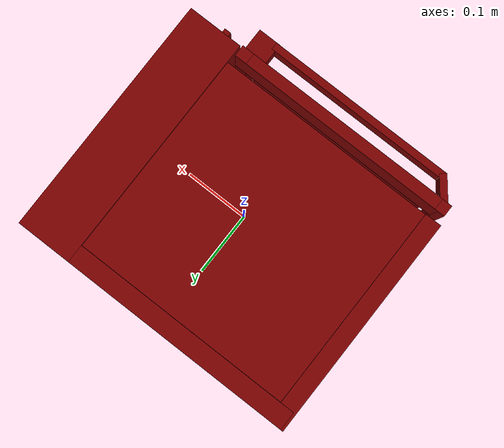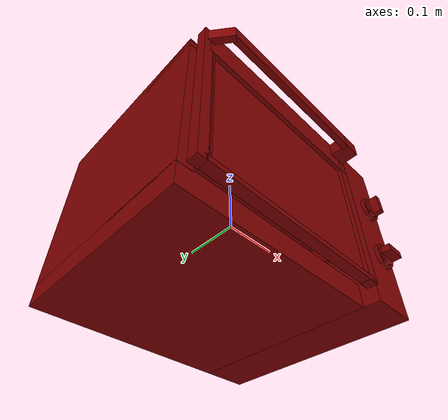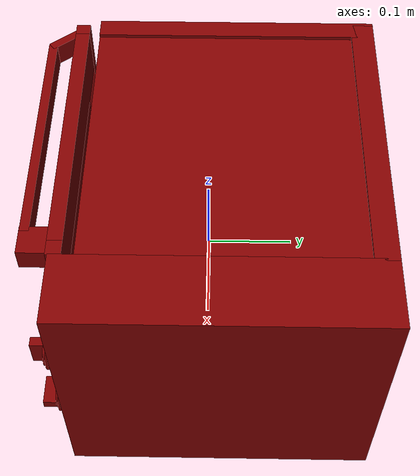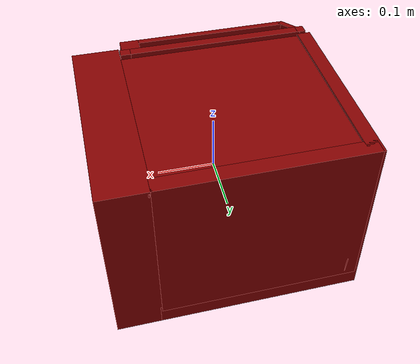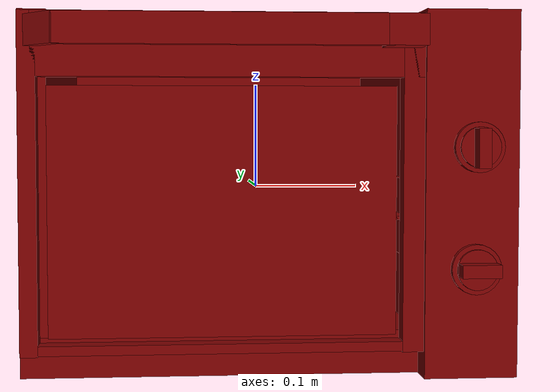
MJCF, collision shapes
<?xml version='1.0' encoding='UTF-8'?>
<mujoco model="model">
  <option timestep="0.002" gravity="0.0 0.0 -9.81"/>
  <compiler angle="radian"/>
  <asset>
    <mesh file="visuals/Body001.obj" name="Body001_vis"/>
    <mesh file="visuals/Container001.obj" name="Container001_vis"/>
    <mesh file="visuals/Door001.obj" name="Door001_vis"/>
    <mesh file="visuals/Door001_Clear.obj" name="Door001_Clear_vis"/>
    <mesh file="visuals/Knob001.obj" name="Knob001_vis"/>
    <mesh file="visuals/Knob002.obj" name="Knob002_vis"/>
    <texture file="visuals/T_BC001.png" name="Body001_material" type="2d"/>
    <material name="Body001_material" rgba="1 1 1 1.0" texture="Body001_material" shininess="0.1" specular="4"/>
    <texture file="visuals/T_BC001.png" name="Container001_material" type="2d"/>
    <material name="Container001_material" rgba="1 1 1 1.0" texture="Container001_material" shininess="0.1" specular="4"/>
    <texture file="visuals/T_BC001.png" name="Door001_material" type="2d"/>
    <material name="Door001_material" rgba="1 1 1 1.0" texture="Door001_material" shininess="0.1" specular="4"/>
    <material name="Door001_Clear_material" rgba="0.048379525542259216 0.048379525542259216 0.048379525542259216 0.800000011920929" shininess="0.141421377658844" specular="0.3103448502657381"/>
    <texture file="visuals/T_BC001.png" name="Knob001_material" type="2d"/>
    <material name="Knob001_material" rgba="1 1 1 1.0" texture="Knob001_material" shininess="0.1" specular="4"/>
    <texture file="visuals/T_BC001.png" name="Knob002_material" type="2d"/>
    <material name="Knob002_material" rgba="1 1 1 1.0" texture="Knob002_material" shininess="0.1" specular="4"/>
  </asset>
  <default>
    <default class="visual">
      <geom conaffinity="0" contype="0" group="1" type="mesh"/>
    </default>
    <default class="collision">
      <geom group="0" rgba="0.5 0 0 0.5"/>
    </default>
    <default class="spawn">
      <geom group="0" rgba="1 1 1 0.5" contype="0" conaffinity="0"/>
      <site group="0" rgba="1 1 1 0.5"/>
    </default>
    <default class="region">
      <geom group="1" conaffinity="0" contype="0" rgba="0 1 0 0"/>
    </default>
  </default>
  <worldbody>
    <body>
      <body name="object">
        <geom mesh="Body001_vis" type="mesh" solimp="0.998 0.998 0.001" solref="0.001 1" friction="0.95 0.3 0.1" class="visual" material="Body001_material"/>
        <geom class="collision" type="box" pos="-0.20415274798870087 0.030364345759153366 0.018009334802627563" size="0.01228012889623642 0.166828453540802 0.14232683181762695" quat="1.0 0.0 0.0 0.0"/>
        <geom class="collision" type="box" pos="-0.03830508887767792 0.030487140640616417 -0.14075882732868195" size="0.17812778055667877 0.1667056530714035 0.019267026335000992" quat="1.0 0.0 0.0 0.0"/>
        <geom class="collision" type="box" pos="-0.03784903511404991 0.18357542157173157 0.013823936693370342" size="0.17491492629051208 0.013617407530546188 0.1465122401714325" quat="1.0 0.0 0.0 0.0"/>
        <geom class="collision" type="box" pos="0.17535442113876343 0.017078449949622154 0.00015325029380619526" size="0.04107845202088356 0.18011435866355896 0.16018293797969818" quat="1.0 0.0 0.0 0.0"/>
        <geom class="collision" type="box" pos="-0.037926942110061646 0.030364345759153366 0.14960181713104248" size="0.17850592732429504 0.166828453540802 0.006701894570142031" quat="1.0 0.0 0.0 0.0"/>
        <geom class="collision" type="box" pos="-0.18752072751522064 0.01099355798214674 -0.004263693932443857" size="0.0038743503391742706 0.1269080638885498 0.01615913026034832" quat="1.0 0.0 0.0 0.0"/>
        <geom class="collision" type="box" pos="0.129982128739357 0.01099355798214674 -0.00426369346678257" size="0.0038743503391742706 0.1269080638885498 0.01615913212299347" quat="1.0 0.0 0.0 0.0"/>
        <geom class="collision" type="box" pos="0.129982128739357 0.01099355798214674 -0.0417608767747879" size="0.0038743503391742706 0.1269080638885498 0.01615913212299347" quat="1.0 0.0 0.0 0.0"/>
        <geom class="collision" type="box" pos="-0.18752072751522064 0.01099355798214674 -0.041760873049497604" size="0.0038743503391742706 0.1269080638885498 0.01615913026034832" quat="1.0 0.0 0.0 0.0"/>
        <body name="Container001">
          <joint axis="0.0 -1.0 0.0" pos="-0.0286320298910141 0.008345574140548706 -0.0250944085419178" limited="true" name="Container001_joint" range="0.0 0.18" type="slide" damping="1" frictionloss="1" armature=".01" stiffness="0.05"/>
          <geom mesh="Container001_vis" type="mesh" solimp="0.998 0.998 0.001" solref="0.001 1" friction="0.95 0.3 0.1" class="visual" material="Container001_material"/>
          <geom class="collision" type="box" pos="-0.028050526976585388 0.00856306403875351 -0.03312180936336517" size="0.13570380210876465 0.12284986674785614 0.0030371095053851604" quat="1.0 0.0 0.0 0.0"/>
          <geom class="collision" type="box" pos="-0.18249718844890594 0.00848282128572464 -0.023407921195030212" size="0.008577265776693821 0.12300089746713638 0.0016675754450261593" quat="1.0 0.0 0.0 0.0"/>
          <geom class="collision" type="box" pos="-0.16859768331050873 0.008476242423057556 -0.028198152780532837" size="0.008577265776693821 0.12300733476877213 0.0016675754450261593" quat="0.9440328478813171 -2.0632491271044273e-08 0.3298514783382416 7.209132402152818e-09"/>
          <geom class="collision" type="box" pos="0.11243187636137009 0.00847623497247696 -0.028198152780532837" size="0.008577265776693821 0.12300732731819153 0.001667564152739942" quat="7.127249546101666e-08 -0.9440328478813171 -2.4903092921135794e-08 -0.3298514783382416"/>
          <geom class="collision" type="box" pos="0.1255408525466919 0.00848282128572464 -0.023407921195030212" size="0.008577265776693821 0.12300089746713638 0.0016675754450261593" quat="1.0 0.0 0.0 0.0"/>
          <geom class="collision" type="box" pos="-0.16493763029575348 0.010533690452575684 -0.022929660975933075" size="0.01039555761963129 0.10141760855913162 0.0013619114179164171" quat="0.834775984287262 4.4288775313816586e-08 0.5505897402763367 -1.412595151961682e-09"/>
          <geom class="collision" type="box" pos="-0.030840031802654266 -0.10302691161632538 -0.022451981902122498" size="0.010395568795502186 0.12232556194067001 0.0013619264354929328" quat="0.560018002986908 -0.43171724677085876 0.43171700835227966 0.5600183010101318"/>
          <geom class="collision" type="box" pos="0.10875648260116577 0.010533690452575684 -0.022929660975933075" size="0.010395561344921589 0.10141760855913162 0.0013619245728477836" quat="3.057074238199675e-08 0.834775984287262 7.635351906287724e-09 0.5505897402763367"/>
          <geom class="collision" type="box" pos="-0.03084002062678337 0.12535323202610016 -0.022451981902122498" size="0.010395568795502186 0.12232555449008942 0.0013619414530694485" quat="0.4317190647125244 -0.5600156188011169 -0.5600206851959229 -0.431715190410614"/>
          <geom class="collision" type="box" pos="-0.16124983131885529 -0.09286629408597946 -0.022929660975933075" size="0.010395561344921589 0.006986106745898724 0.0013619414530694485" quat="0.8021135926246643 -0.15250761806964874 0.529046893119812 0.23122413456439972"/>
          <geom class="collision" type="box" pos="-0.15337802469730377 -0.1000886783003807 -0.022929631173610687" size="0.010395553894340992 0.006986099295318127 0.0013619114179164171" quat="0.7184903621673584 -0.28031352162361145 0.4738919734954834 0.42499685287475586"/>
          <geom class="collision" type="box" pos="-0.17176543176174164 0.010817490518093109 -0.014918908476829529" size="0.004246910568326712 0.10587437450885773 0.0010674485238268971" quat="1.0 0.0 0.0 0.0"/>
          <geom class="collision" type="box" pos="-0.028321094810962677 -0.10664207488298416 -0.014918908476829529" size="0.13291940093040466 0.0026962708216160536 0.0010674635414034128" quat="1.0 0.0 0.0 0.0"/>
          <geom class="collision" type="box" pos="-0.16910243034362793 -0.09683185815811157 -0.014918908476829529" size="0.004246880766004324 0.0049521178007125854 0.0010674335062503815" quat="0.9630976915359497 -7.4883722334107e-08 -9.148812374348836e-09 0.26915204524993896"/>
          <geom class="collision" type="box" pos="-0.16307450830936432 -0.10251420736312866 -0.014918908476829529" size="0.004246910102665424 0.0058218990452587605 0.0010674335062503815" quat="0.8660538196563721 -1.892820655768901e-08 -1.0926771487618225e-08 0.4999507665634155"/>
          <geom class="collision" type="box" pos="-0.16307449340820312 0.12372061610221863 -0.014918908476829529" size="0.004246910568326712 0.005821899976581335 0.0010674335062503815" quat="4.651262841548487e-08 -0.4999507665634155 -0.8660538196563721 -7.043785643645606e-08"/>
          <geom class="collision" type="box" pos="-0.16910243034362793 0.1180383563041687 -0.014918908476829529" size="0.004246881231665611 0.00495211873203516 0.0010674335062503815" quat="8.102094284367922e-08 0.26915183663368225 0.9630977511405945 9.411745161003182e-09"/>
          <geom class="collision" type="box" pos="-0.15337805449962616 0.12129524350166321 -0.02292964607477188" size="0.010395553894340992 0.006986084394156933 0.0013619116507470608" quat="0.4738919138908386 -0.42499667406082153 -0.7184905409812927 -0.2803134322166443"/>
          <geom class="collision" type="box" pos="-0.16124983131885529 0.11407285928726196 -0.022929653525352478" size="0.010395561344921589 0.0069860671646893024 0.0013619414530694485" quat="0.5290468335151672 -0.23122407495975494 -0.8021136522293091 -0.15250758826732635"/>
          <geom class="collision" type="box" pos="-0.02832108736038208 0.12875306606292725 -0.014918908476829529" size="0.13291940093040466 0.002696278505027294 0.0010674635414034128" quat="1.0 0.0 0.0 0.0"/>
          <geom class="collision" type="box" pos="0.1047220304608345 0.11407285928726196 -0.02292964607477188" size="0.010395561344921589 0.006986069027334452 0.0013619264354929328" quat="0.23122406005859375 0.5290468335151672 0.15250755846500397 -0.8021136522293091"/>
          <geom class="collision" type="box" pos="0.09675933420658112 0.1212952733039856 -0.022929660975933075" size="0.010395553894340992 0.006986084394156933 0.0013619114179164171" quat="0.4249967634677887 0.47389188408851624 0.2803134620189667 -0.718490481376648"/>
          <geom class="collision" type="box" pos="0.11248373240232468 0.11803838610649109 -0.014918908476829529" size="0.004246910568326712 0.0049521178007125854 0.0010674335062503815" quat="0.2691517472267151 6.8938410535679395e-09 1.7478617664323792e-08 -0.9630978107452393"/>
          <geom class="collision" type="box" pos="0.10645583271980286 0.12372061610221863 -0.014918908476829529" size="0.004246910568326712 0.005821899976581335 0.0010674335062503815" quat="0.49995073676109314 1.88726119176863e-08 -3.26926254956561e-08 -0.8660538196563721"/>
          <geom class="collision" type="box" pos="0.10685637593269348 -0.10251417756080627 -0.014918908476829529" size="0.004246910102665424 0.0058218990452587605 0.0010674335062503815" quat="6.538524388588485e-08 -0.8660538196563721 0.4999507665634155 -3.7745234493513635e-08"/>
          <geom class="collision" type="box" pos="0.11288432031869888 -0.09683186560869217 -0.014918908476829529" size="0.004246911033987999 0.00495211873203516 0.0010674335062503815" quat="7.576508664897119e-08 -0.9630977511405945 0.26915186643600464 -9.395116684629556e-09"/>
          <geom class="collision" type="box" pos="0.09675939381122589 -0.10008874535560608 -0.02292967587709427" size="0.010395553894340992 0.006986084394156933 0.0013619114179164171" quat="0.28031325340270996 0.7184906601905823 -0.4249964952468872 0.4738919734954834"/>
          <geom class="collision" type="box" pos="0.10463112592697144 -0.09286627173423767 -0.02292964980006218" size="0.010395565070211887 0.006986069958657026 0.0013619264354929328" quat="0.15250751376152039 0.8021135926246643 -0.23122410476207733 0.5290469527244568"/>
          <geom class="collision" type="box" pos="0.11535310745239258 0.010817490518093109 -0.014918908476829529" size="0.004246903117746115 0.10587437450885773 0.0010674485238268971" quat="1.0 0.0 0.0 0.0"/>
        </body>
        <body name="Door001">
          <joint axis="1.0 0.0 0.0" pos="-0.04003845155239105 -0.1473190039396286 -0.13602320849895477" limited="true" name="Door001_joint" range="0.0 1.5707963267948966" type="hinge" damping="1" frictionloss="1" armature=".01" stiffness="1" springref="-5"/>
          <geom mesh="Door001_vis" type="mesh" solimp="0.998 0.998 0.001" solref="0.001 1" friction="0.95 0.3 0.1" class="visual" material="Door001_material"/>
          <geom class="collision" type="box" pos="0.12332412600517273 -0.15798062086105347 0.010491401888430119" size="0.009189937263727188 0.00839040707796812 0.14581313729286194" quat="1.0 0.0 0.0 0.0"/>
          <geom class="collision" type="box" pos="0.11159779876470566 -0.1786157488822937 0.13966584205627441" size="0.016804123297333717 0.019023166969418526 0.0131309162825346" quat="1.0 0.0 0.0 0.0"/>
          <geom class="collision" type="box" pos="-0.04032648354768753 -0.19220219552516937 0.13966584205627441" size="0.14049795269966125 0.005172274075448513 0.013130927458405495" quat="1.0 0.0 0.0 0.0"/>
          <geom class="collision" type="box" pos="-0.19070479273796082 -0.1786157488822937 0.13966584205627441" size="0.020299002528190613 0.005172316916286945 0.013131000101566315" quat="0.9027569890022278 0.0 -0.0 -0.4301508665084839"/>
          <geom class="collision" type="box" pos="-0.20517940819263458 -0.15798062086105347 0.010491397231817245" size="0.007584613747894764 0.00839040707796812 0.14581289887428284" quat="1.0 0.0 0.0 0.0"/>
          <geom class="collision" type="box" pos="-0.03475116938352585 -0.15798062086105347 0.12886808812618256" size="0.16726620495319366 0.00839040707796812 0.027435747906565666" quat="1.0 0.0 0.0 0.0"/>
          <geom class="collision" type="box" pos="-0.03475116938352585 -0.15798062086105347 -0.1301911473274231" size="0.16726605594158173 0.00839040707796812 0.004177995026111603" quat="1.0 0.0 0.0 0.0"/>
          <body name="Door001_Clear">
            <geom mesh="Door001_Clear_vis" type="mesh" solimp="0.998 0.998 0.001" solref="0.001 1" friction="0.95 0.3 0.1" class="visual" material="Door001_Clear_material"/>
            <geom class="collision" type="box" pos="-0.04032052308320999 -0.16133713722229004 -0.013235360383987427" size="0.1489069014787674 0.0013776615960523486 0.10721638798713684" quat="1.0 0.0 0.0 0.0"/>
          </body>
        </body>
        <body name="Knob001">
          <joint axis="0.0 1.0 0.0" pos="0.17845702171325684 -0.17745542526245117 0.041536737233400345" limited="true" name="Knob001_joint" range="0.0 3.979350694547071" type="hinge" damping="0.05" armature="0.001" springref="-0.01"/>
          <geom mesh="Knob001_vis" type="mesh" solimp="0.998 0.998 0.001" solref="0.001 1" friction="0.95 0.3 0.1" class="visual" material="Knob001_material"/>
          <geom class="collision" type="cylinder" pos="0.1791357696056366 -0.16968730092048645 0.041744932532310486" size="0.02181580662727356 0.0030348224099725485" quat="0.7071068286895752 0.7071067690849304 0.0 0.0"/>
          <geom class="collision" type="cylinder" pos="0.1791357696056366 -0.17273741960525513 0.041744932532310486" size="0.01766309328377247 0.0030348224099725485" quat="0.7071068286895752 0.7071067690849304 0.0 0.0"/>
          <geom class="collision" type="box" pos="0.1784660965204239 -0.1826753318309784 0.041192345321178436" size="0.005347151774913073 0.008014240302145481 0.016881024464964867" quat="1.0 0.0 0.0 0.0"/>
        </body>
        <body name="Knob002">
          <joint axis="0.0 1.0 0.0" pos="0.17750678956508636 -0.17745542526245117 -0.06337741017341614" limited="true" name="Knob002_joint" range="0.0 3.9269908169872414" type="hinge" damping="0.05" armature="0.001" springref="-0.01"/>
          <geom mesh="Knob002_vis" type="mesh" solimp="0.998 0.998 0.001" solref="0.001 1" friction="0.95 0.3 0.1" class="visual" material="Knob002_material"/>
          <geom class="collision" type="cylinder" pos="0.17726966738700867 -0.16968730092048645 -0.06367860734462738" size="0.02181580662727356 0.0030348224099725485" quat="0.7071068286895752 0.7071067690849304 0.0 0.0"/>
          <geom class="collision" type="cylinder" pos="0.17726966738700867 -0.17273741960525513 -0.06367860734462738" size="0.01766309328377247 0.0030348224099725485" quat="0.7071068286895752 0.7071067690849304 0.0 0.0"/>
          <geom class="collision" type="box" pos="0.17711836099624634 -0.1826753318309784 -0.06318798661231995" size="0.0169717725366354 0.008014236576855183 0.00564094353467226" quat="1.0 0.0 0.0 0.0"/>
        </body>
        <geom class="region" name="reg_int" type="box" pos="-0.028471529483795166 0.01520584523677826 0.010962452739477158" size="0.1647653430700302 0.15457585453987122 0.13433371856808662"/>
        <geom class="region" name="reg_main" type="box" pos="0.0 0.015410885214805603 -5.960464477539063e-08" size="0.2164328694343567 0.18178191781044006 0.1603362262248993"/>
      </body>
    </body>
  </worldbody>
  <actuator>
    <motor name="Container001_joint_actuator" joint="Container001_joint" gear="10"/>
    <motor name="Door001_joint_actuator" joint="Door001_joint" gear="50"/>
    <motor name="Knob001_joint_actuator" joint="Knob001_joint" gear="50"/>
    <motor name="Knob002_joint_actuator" joint="Knob002_joint" gear="50"/>
  </actuator>
</mujoco>
